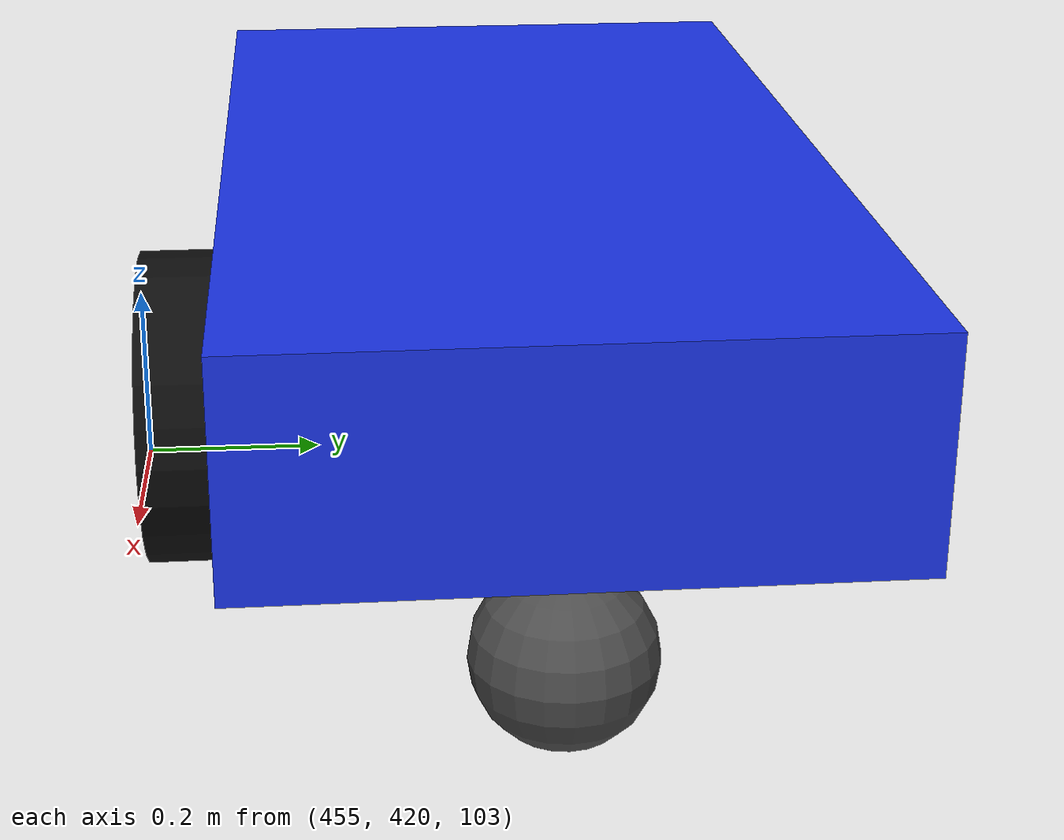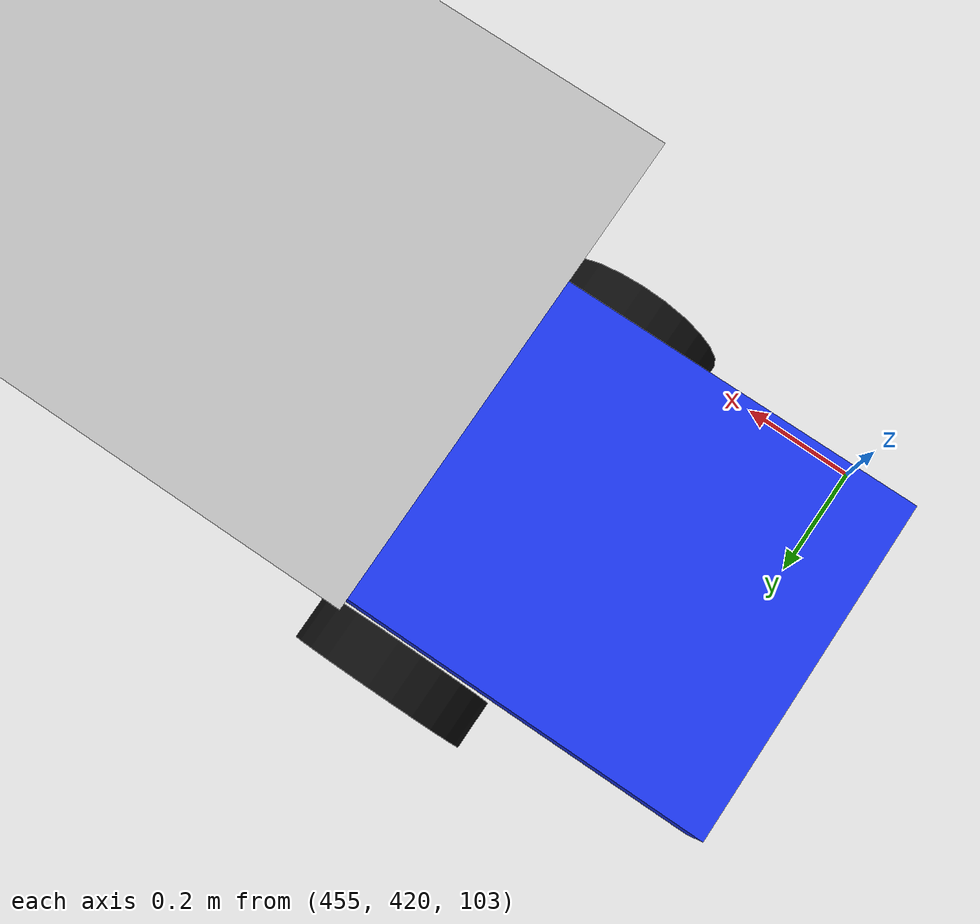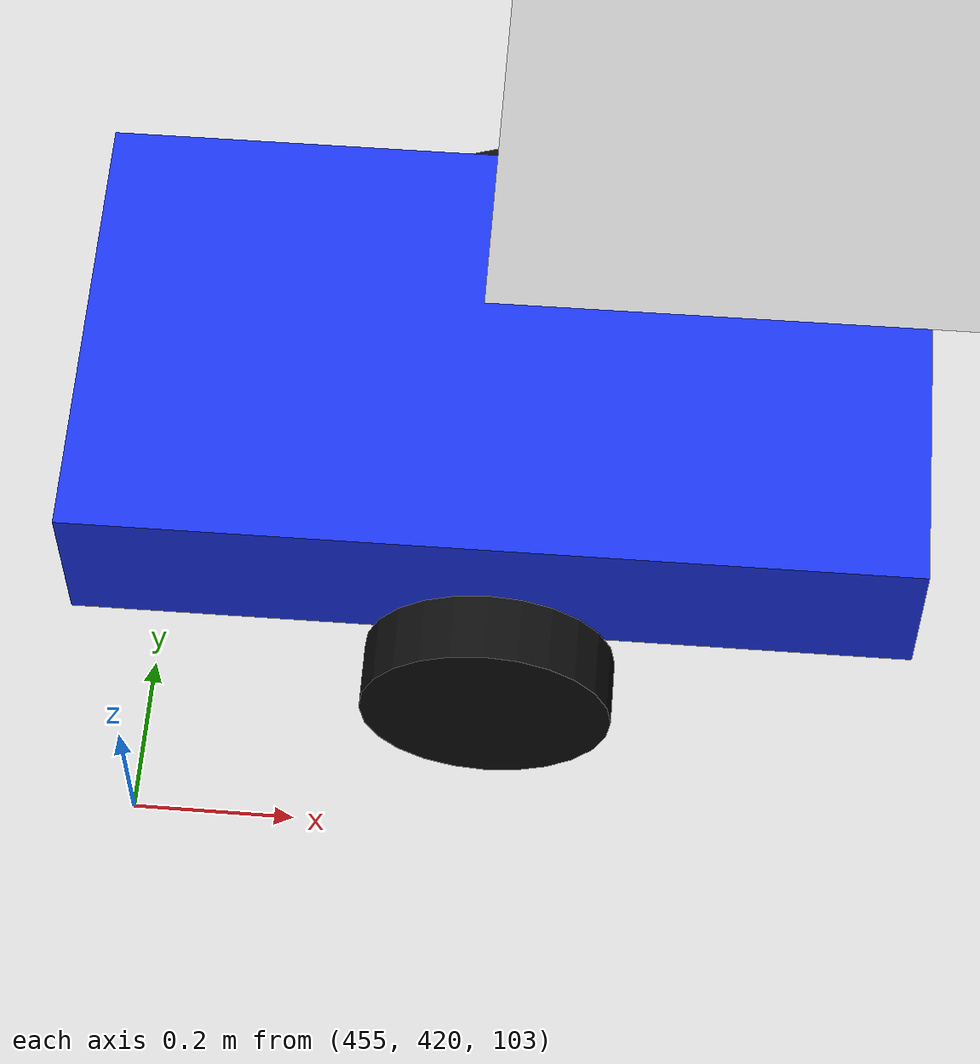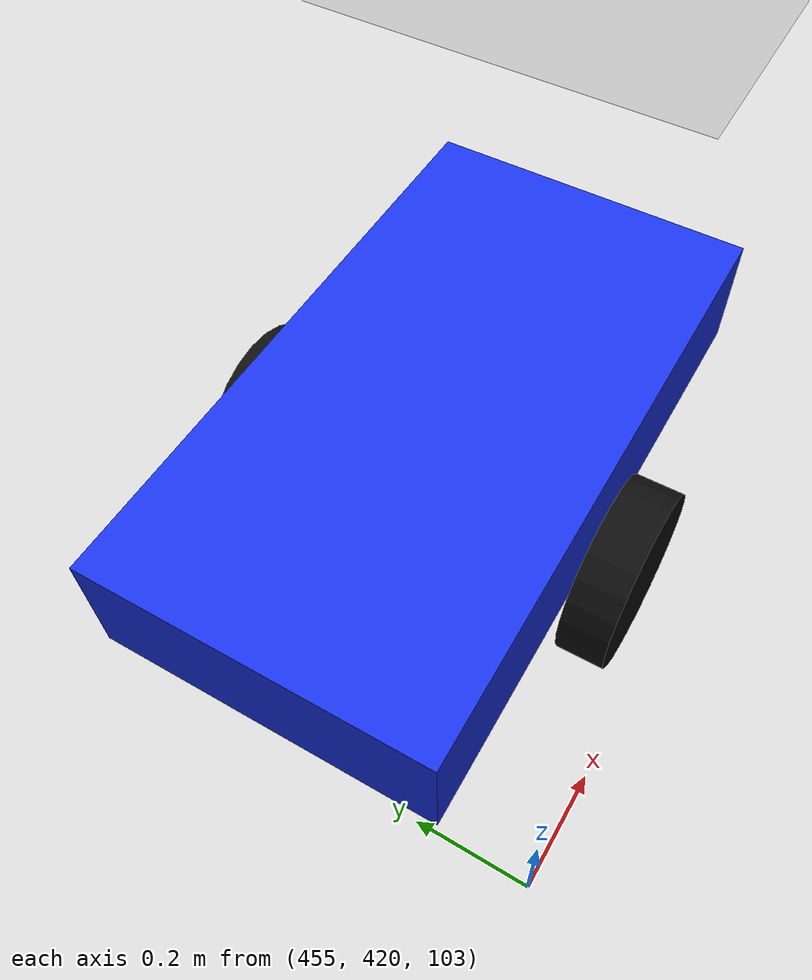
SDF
<sdf version="1.10">
 <world name="terrenoInteres">
  <plugin filename="gz-sim-physics-system" name="gz::sim::systems::Physics"/>
  <plugin filename="gz-sim-user-commands-system" name="gz::sim::systems::UserCommands"/>
  <plugin filename="gz-sim-scene-broadcaster-system" name="gz::sim::systems::SceneBroadcaster"/>
  <scene>
   <ambient>0.45 0.45 0.45 1</ambient>
   <background>0.70 0.80 0.92 1</background>
   <shadows>true</shadows>
  </scene>
  <light name="sun" type="directional">
   <pose>0 0 10 0 0 0</pose>
   <diffuse>0.9 0.9 0.9 1</diffuse>
   <specular>0.2 0.2 0.2 1</specular>
   <direction>-0.5 0.3 -1.0</direction>
  </light>
  <model name="generated_work_route">
   <static>true</static>
   <link name="work_route_link">
    <visual name="work_route_visual">
     <geometry><mesh><uri>gazebo_route/work_route.obj</uri><scale>1 1 1</scale></mesh></geometry>
    </visual>
   </link>
  </model>
  <include>
   <uri>model://simple_route_robot</uri>
   <name>simple_route_robot</name>
   <pose>455.43284 420.40143 103.09436 0 0 0.0094424977</pose>
  </include>
  <model name="generated_dockout_route">
   <static>true</static>
   <link name="dockout_route_link">
    <visual name="dockout_route_visual">
     <geometry><mesh><uri>gazebo_route/dockout_route.obj</uri><scale>1 1 1</scale></mesh></geometry>
    </visual>
   </link>
  </model>
 </world>
</sdf>

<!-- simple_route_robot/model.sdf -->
<sdf version="1.10">

      <model name="simple_route_robot">

        <link name="base_link">
          <pose>0 0 0.30 0 0 0</pose>

          <inertial>
            <mass>15.0</mass>
            <inertia>
              <ixx>0.43</ixx>
              <iyy>1.30</iyy>
              <izz>1.63</izz>
            </inertia>
          </inertial>

          <collision name="base_collision">
            <geometry>
              <box>
                <size>1.00 0.55 0.20</size>
              </box>
            </geometry>
          </collision>

          <visual name="base_visual">
            <geometry>
              <box>
                <size>1.00 0.55 0.20</size>
              </box>
            </geometry>

            <material>
              <ambient>0.10 0.20 0.90 1</ambient>
              <diffuse>0.10 0.20 0.90 1</diffuse>
            </material>
          </visual>
        </link>

        <!-- RUEDA MOTRIZ IZQUIERDA -->

        <link name="left_wheel">
          <pose>0 0.32 0.15 0 0 0</pose>

          <inertial>
            <mass>1.0</mass>
            <inertia>
              <ixx>0.0062</ixx>
              <iyy>0.0113</iyy>
              <izz>0.0062</izz>
            </inertia>
          </inertial>

          <collision name="collision">
            <pose>0 0 0 1.570796 0 0</pose>

            <geometry>
              <cylinder>
                <radius>0.15</radius>
                <length>0.08</length>
              </cylinder>
            </geometry>

            <surface>
              <friction>
                <ode>
                  <mu>5.0</mu>
                  <mu2>5.0</mu2>
                </ode>
              </friction>
            </surface>
          </collision>

          <visual name="visual">
            <pose>0 0 0 1.570796 0 0</pose>

            <geometry>
              <cylinder>
                <radius>0.15</radius>
                <length>0.08</length>
              </cylinder>
            </geometry>

            <material>
              <ambient>0.05 0.05 0.05 1</ambient>
              <diffuse>0.05 0.05 0.05 1</diffuse>
            </material>
          </visual>
        </link>

        <!-- RUEDA MOTRIZ DERECHA -->

        <link name="right_wheel">
          <pose>0 -0.32 0.15 0 0 0</pose>

          <inertial>
            <mass>1.0</mass>
            <inertia>
              <ixx>0.0062</ixx>
              <iyy>0.0113</iyy>
              <izz>0.0062</izz>
            </inertia>
          </inertial>

          <collision name="collision">
            <pose>0 0 0 1.570796 0 0</pose>

            <geometry>
              <cylinder>
                <radius>0.15</radius>
                <length>0.08</length>
              </cylinder>
            </geometry>

            <surface>
              <friction>
                <ode>
                  <mu>5.0</mu>
                  <mu2>5.0</mu2>
                </ode>
              </friction>
            </surface>
          </collision>

          <visual name="visual">
            <pose>0 0 0 1.570796 0 0</pose>

            <geometry>
              <cylinder>
                <radius>0.15</radius>
                <length>0.08</length>
              </cylinder>
            </geometry>

            <material>
              <ambient>0.05 0.05 0.05 1</ambient>
              <diffuse>0.05 0.05 0.05 1</diffuse>
            </material>
          </visual>
        </link>

        <!-- CASTER DELANTERO -->

        <link name="front_caster">
          <pose>0.38 0 0.08 0 0 0</pose>

          <inertial>
            <mass>0.20</mass>
            <inertia>
              <ixx>0.0005</ixx>
              <iyy>0.0005</iyy>
              <izz>0.0005</izz>
            </inertia>
          </inertial>

          <collision name="collision">
            <geometry>
              <sphere>
                <radius>0.06</radius>
              </sphere>
            </geometry>

            <surface>
              <friction>
                <ode>
                  <mu>0.05</mu>
                  <mu2>0.05</mu2>
                </ode>
              </friction>
            </surface>
          </collision>

          <visual name="visual">
            <geometry>
              <sphere>
                <radius>0.08</radius>
              </sphere>
            </geometry>

            <material>
              <ambient>0.30 0.30 0.30 1</ambient>
              <diffuse>0.30 0.30 0.30 1</diffuse>
            </material>
          </visual>
        </link>

        <!-- CASTER TRASERO -->

        <link name="rear_caster">
          <pose>-0.38 0 0.08 0 0 0</pose>

          <inertial>
            <mass>0.20</mass>
            <inertia>
              <ixx>0.0005</ixx>
              <iyy>0.0005</iyy>
              <izz>0.0005</izz>
            </inertia>
          </inertial>

          <collision name="collision">
            <geometry>
              <sphere>
                <radius>0.08</radius>
              </sphere>
            </geometry>

            <surface>
              <friction>
                <ode>
                  <mu>0.05</mu>
                  <mu2>0.05</mu2>
                </ode>
              </friction>
            </surface>
          </collision>

          <visual name="visual">
            <geometry>
              <sphere>
                <radius>0.08</radius>
              </sphere>
            </geometry>

            <material>
              <ambient>0.30 0.30 0.30 1</ambient>
              <diffuse>0.30 0.30 0.30 1</diffuse>
            </material>
          </visual>
        </link>

        <!-- JOINTS DE LAS RUEDAS MOTRICES -->

        <joint name="left_wheel_joint" type="revolute">
          <parent>base_link</parent>
          <child>left_wheel</child>

          <axis>
            <xyz>0 1 0</xyz>
          </axis>
        </joint>

        <joint name="right_wheel_joint" type="revolute">
          <parent>base_link</parent>
          <child>right_wheel</child>

          <axis>
            <xyz>0 1 0</xyz>
          </axis>
        </joint>

        <!-- JOINTS LIBRES DE LOS CASTER -->

        <joint name="front_caster_joint" type="ball">
          <parent>base_link</parent>
          <child>front_caster</child>
        </joint>

        <joint name="rear_caster_joint" type="ball">
          <parent>base_link</parent>
          <child>rear_caster</child>
        </joint>

        <!-- CONTROL DIFERENCIAL -->

        <plugin
          filename="gz-sim-diff-drive-system"
          name="gz::sim::systems::DiffDrive">

          <left_joint>left_wheel_joint</left_joint>
          <right_joint>right_wheel_joint</right_joint>

          <wheel_separation>0.64</wheel_separation>
          <wheel_radius>0.15</wheel_radius>

          <odom_publish_frequency>20</odom_publish_frequency>

          <topic>/simple_route_robot/cmd_vel</topic>
          <odom_topic>/simple_route_robot/odometry</odom_topic>

        </plugin>

      </model>

    </sdf>
